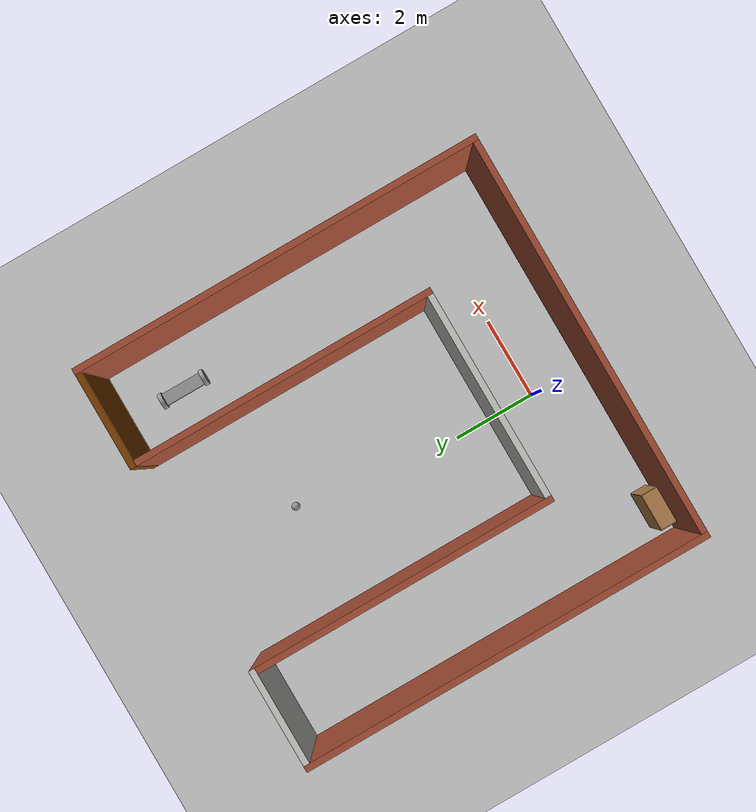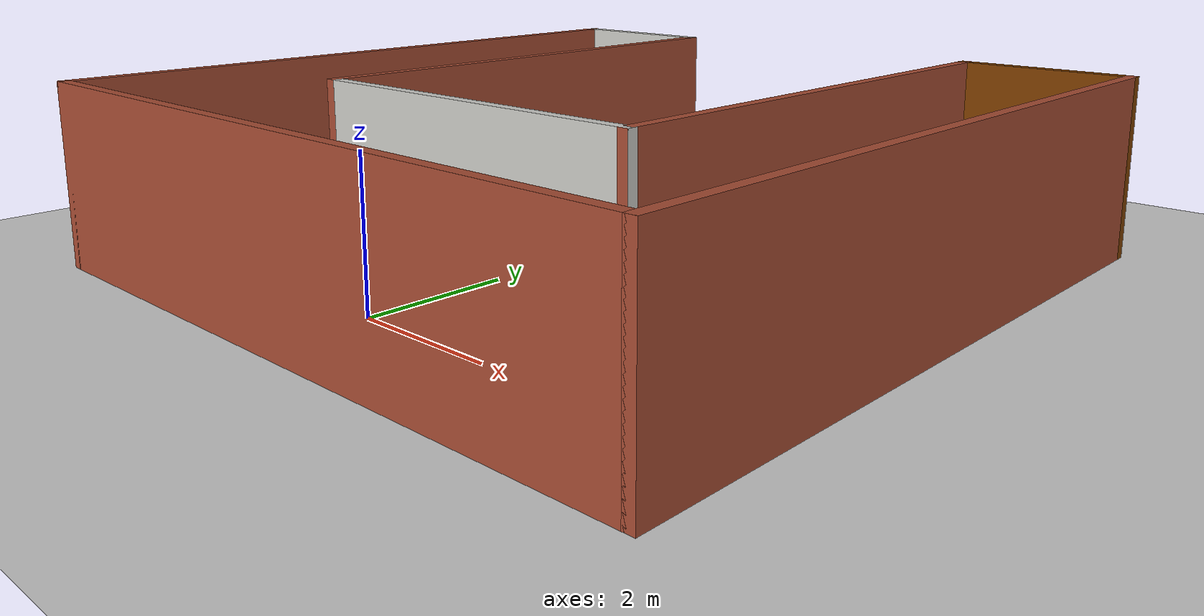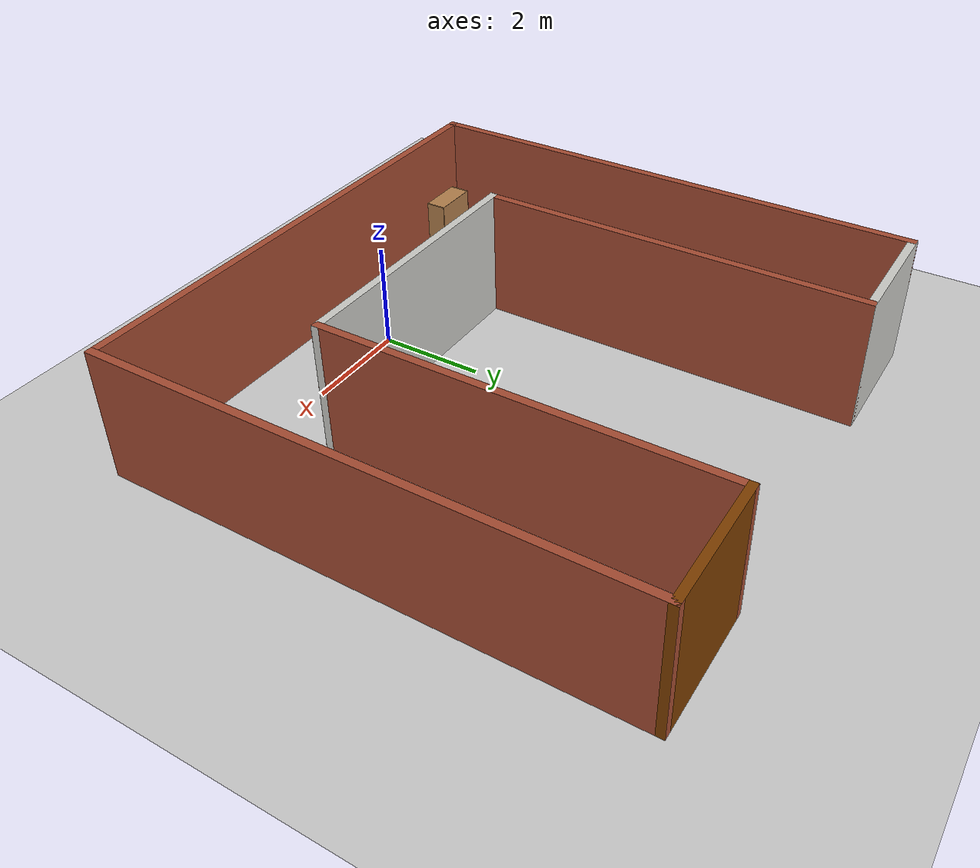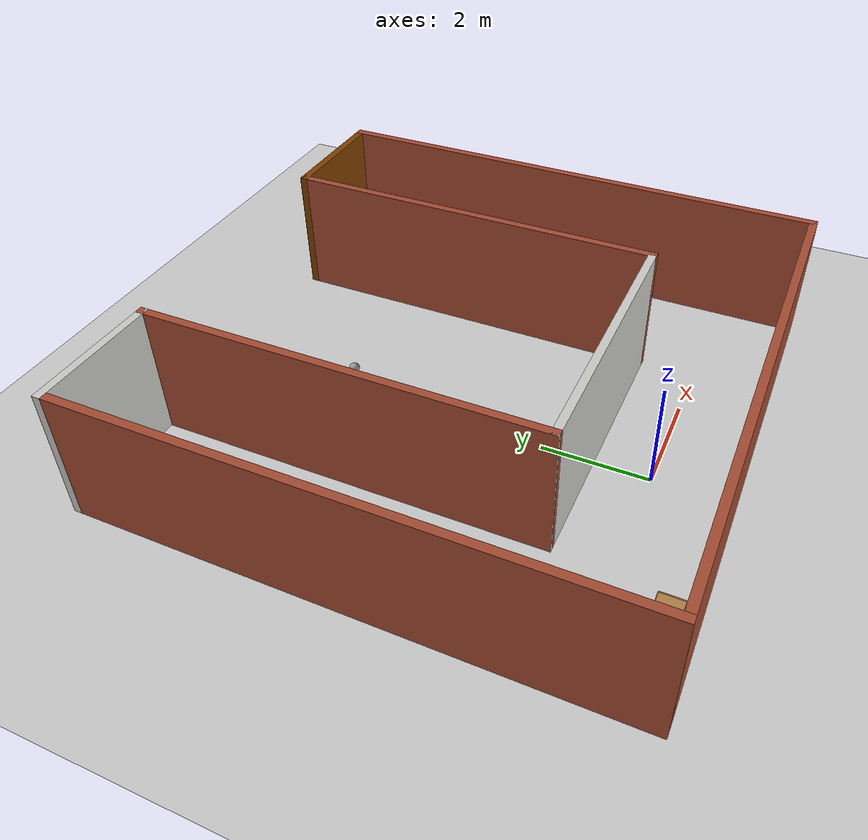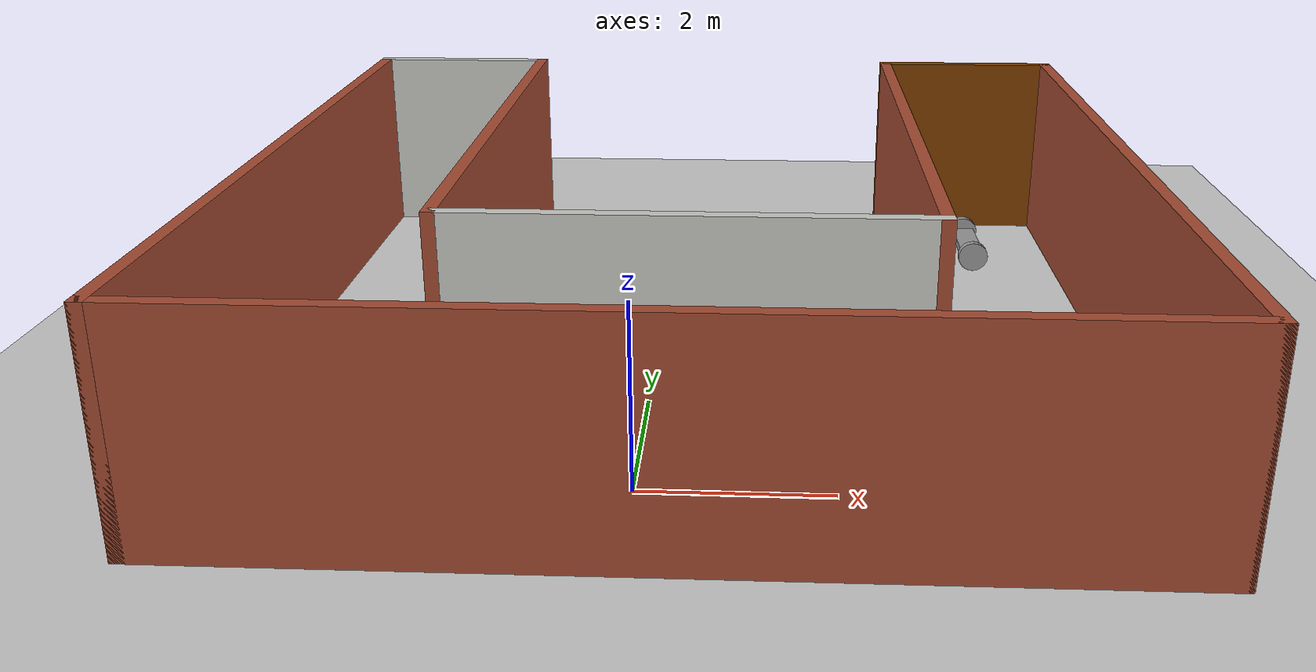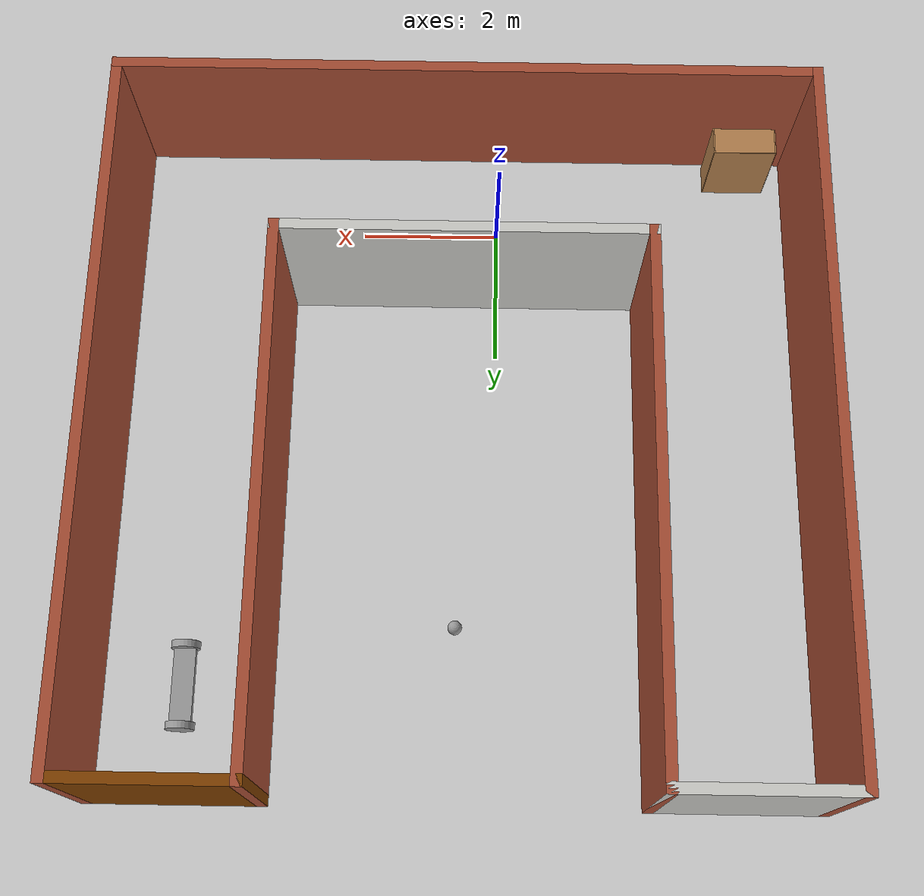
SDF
<sdf version="1.6">
 <world name="default">
  <plugin name="hello" filename="libhello.so"/>
  <light name="sun" type="directional">
   <pose>0 0 10 0 -0 0</pose>
   <diffuse>0.8 0.8 0.8 1</diffuse>
   <specular>0.2 0.2 0.2 1</specular>
   <attenuation>
    <range>1000</range>
    <constant>0.9</constant>
    <linear>0.01</linear>
    <quadratic>0.001</quadratic>
   </attenuation>
   <direction>-0.5 0.1 -0.9</direction>
  </light>
  <model name="ground_plane">
   <static>1</static>
   <link name="link">
    <collision name="collision">
     <geometry><plane><normal>0 0 1</normal><size>100 100</size></plane></geometry>
     <surface>
      <contact><collide_bitmask>65535</collide_bitmask></contact>
      <friction><ode><mu>100</mu><mu2>50</mu2></ode></friction>
     </surface>
    </collision>
    <visual name="visual">
     <cast_shadows>0</cast_shadows>
     <geometry><plane><normal>0 0 1</normal><size>100 100</size></plane></geometry>
     <material>
      <script><uri>file://media/materials/scripts/gazebo.material</uri><name>Gazebo/Grey</name></script>
     </material>
    </visual>
   </link>
  </model>
  <gravity>0 0 -9.8</gravity>
  <magnetic_field>6e-06 2.3e-05 -4.2e-05</magnetic_field>
  <atmosphere type="adiabatic"/>
  <physics name="default_physics" default="0" type="ode">
   <max_step_size>0.001</max_step_size>
   <real_time_factor>1</real_time_factor>
   <real_time_update_rate>1000</real_time_update_rate>
  </physics>
  <scene><ambient>0.4 0.4 0.4 1</ambient><background>0.7 0.7 0.7 1</background><shadows>1</shadows></scene>
  <spherical_coordinates>
   <surface_model>EARTH_WGS84</surface_model>
   <latitude_deg>0</latitude_deg>
   <longitude_deg>0</longitude_deg>
   <elevation>0</elevation>
   <heading_deg>0</heading_deg>
  </spherical_coordinates>
  <model name="mybuilding">
   <pose>0.47786 3.52193 0 0 -0 0</pose>
   <link name="Wall_12">
    <collision name="Wall_12_Collision">
     <geometry><box><size>10 0.15 2.5</size></box></geometry>
     <pose>0 0 1.25 0 -0 0</pose>
    </collision>
    <visual name="Wall_12_Visual">
     <pose>0 0 1.25 0 -0 0</pose>
     <geometry><box><size>10 0.15 2.5</size></box></geometry>
     <material>
      <script><uri>file://media/materials/scripts/gazebo.material</uri><name>Gazebo/Bricks</name></script>
      <ambient>0.996078 0.47451 0.0196078 1</ambient>
     </material>
     <meta><layer>0</layer></meta>
    </visual>
    <pose>4.925 -0.00017 0 0 -0 1.5708</pose>
   </link>
   <link name="Wall_14">
    <collision name="Wall_14_Collision">
     <geometry><box><size>2.5 0.15 2.5</size></box></geometry>
     <pose>0 0 1.25 0 -0 0</pose>
    </collision>
    <visual name="Wall_14_Visual">
     <pose>0 0 1.25 0 -0 0</pose>
     <geometry><box><size>2.5 0.15 2.5</size></box></geometry>
     <material>
      <script><uri>file://media/materials/scripts/gazebo.material</uri><name>Gazebo/Grey</name></script>
      <ambient>0.498039 0.247059 0 1</ambient>
     </material>
     <meta><layer>0</layer></meta>
    </visual>
    <pose>3.75 4.92483 0 0 -0 3.14159</pose>
   </link>
   <link name="Wall_16">
    <collision name="Wall_16_Collision">
     <geometry><box><size>10 0.15 2.5</size></box></geometry>
     <pose>0 0 1.25 0 -0 0</pose>
    </collision>
    <visual name="Wall_16_Visual">
     <pose>0 0 1.25 0 -0 0</pose>
     <geometry><box><size>10 0.15 2.5</size></box></geometry>
     <material>
      <script><uri>file://media/materials/scripts/gazebo.material</uri><name>Gazebo/Bricks</name></script>
      <ambient>0.996078 0.47451 0.0196078 1</ambient>
     </material>
     <meta><layer>0</layer></meta>
    </visual>
    <pose>-4.925 -0.00017 0 0 0 -1.5708</pose>
   </link>
   <link name="Wall_18">
    <collision name="Wall_18_Collision">
     <geometry><box><size>10 0.15 2.5</size></box></geometry>
     <pose>0 0 1.25 0 -0 0</pose>
    </collision>
    <visual name="Wall_18_Visual">
     <pose>0 0 1.25 0 -0 0</pose>
     <geometry><box><size>10 0.15 2.5</size></box></geometry>
     <material>
      <script><uri>file://media/materials/scripts/gazebo.material</uri><name>Gazebo/Bricks</name></script>
      <ambient>0.996078 0.47451 0.0196078 1</ambient>
     </material>
     <meta><layer>0</layer></meta>
    </visual>
    <pose>0 -4.92517 0 0 -0 0</pose>
   </link>
   <link name="Wall_20">
    <collision name="Wall_20_Collision">
     <geometry><box><size>2.5 0.15 2.5</size></box></geometry>
     <pose>0 0 1.25 0 -0 0</pose>
    </collision>
    <visual name="Wall_20_Visual">
     <pose>0 0 1.25 0 -0 0</pose>
     <geometry><box><size>2.5 0.15 2.5</size></box></geometry>
     <material>
      <script><uri>file://media/materials/scripts/gazebo.material</uri><name>Gazebo/CeilingTiled</name></script>
      <ambient>0.498039 0.247059 0 1</ambient>
     </material>
     <meta><layer>0</layer></meta>
    </visual>
    <pose>-3.75 4.92483 0 0 -0 0</pose>
   </link>
   <link name="Wall_22">
    <collision name="Wall_22_Collision">
     <geometry><box><size>7.5 0.15 2.5</size></box></geometry>
     <pose>0 0 1.25 0 -0 0</pose>
    </collision>
    <visual name="Wall_22_Visual">
     <pose>0 0 1.25 0 -0 0</pose>
     <geometry><box><size>7.5 0.15 2.5</size></box></geometry>
     <material>
      <script><uri>file://media/materials/scripts/gazebo.material</uri><name>Gazebo/Bricks</name></script>
      <ambient>0.996078 0.47451 0.0196078 1</ambient>
     </material>
     <meta><layer>0</layer></meta>
    </visual>
    <pose>-2.575 1.24983 0 0 0 -1.5708</pose>
   </link>
   <link name="Wall_24">
    <collision name="Wall_24_Collision">
     <geometry><box><size>7.50068 0.15 2.5</size></box></geometry>
     <pose>0 0 1.25 0 -0 0</pose>
    </collision>
    <visual name="Wall_24_Visual">
     <pose>0 0 1.25 0 -0 0</pose>
     <geometry><box><size>7.50068 0.15 2.5</size></box></geometry>
     <material>
      <script><uri>file://media/materials/scripts/gazebo.material</uri><name>Gazebo/Bricks</name></script>
      <ambient>0.996078 0.47451 0.0196078 1</ambient>
     </material>
     <meta><layer>0</layer></meta>
    </visual>
    <pose>2.575 1.24983 0 0 0 -1.5708</pose>
   </link>
   <link name="Wall_26">
    <collision name="Wall_26_Collision">
     <geometry><box><size>5.3 0.15 2.5</size></box></geometry>
     <pose>0 0 1.25 0 -0 0</pose>
    </collision>
    <visual name="Wall_26_Visual">
     <pose>0 0 1.25 0 -0 0</pose>
     <geometry><box><size>5.3 0.15 2.5</size></box></geometry>
     <material>
      <script><uri>file://media/materials/scripts/gazebo.material</uri><name>Gazebo/CeilingTiled</name></script>
      <ambient>0.498039 0.247059 0 1</ambient>
     </material>
     <meta><layer>0</layer></meta>
    </visual>
    <pose>0 -2.42517 0 0 -0 0</pose>
   </link>
   <static>1</static>
  </model>
  <model name="bookshelf">
   <static>1</static>
   <link name="link">
    <inertial><mass>1</mass></inertial>
    <collision name="back">
     <pose>0 0.005 0.6 0 -0 0</pose>
     <geometry><box><size>0.9 0.01 1.2</size></box></geometry>
    </collision>
    <visual name="visual1">
     <pose>0 0.005 0.6 0 -0 0</pose>
     <geometry><box><size>0.9 0.01 1.2</size></box></geometry>
     <material>
      <script><uri>file://media/materials/scripts/gazebo.material</uri><name>Gazebo/Wood</name></script>
     </material>
    </visual>
    <collision name="left_side">
     <pose>0.45 -0.195 0.6 0 -0 0</pose>
     <geometry><box><size>0.02 0.4 1.2</size></box></geometry>
    </collision>
    <visual name="visual2">
     <pose>0.45 -0.195 0.6 0 -0 0</pose>
     <geometry><box><size>0.02 0.4 1.2</size></box></geometry>
     <material>
      <script><uri>file://media/materials/scripts/gazebo.material</uri><name>Gazebo/Wood</name></script>
     </material>
    </visual>
    <collision name="right_side">
     <pose>-0.45 -0.195 0.6 0 -0 0</pose>
     <geometry><box><size>0.02 0.4 1.2</size></box></geometry>
    </collision>
    <visual name="visual3">
     <pose>-0.45 -0.195 0.6 0 -0 0</pose>
     <geometry><box><size>0.02 0.4 1.2</size></box></geometry>
     <material>
      <script><uri>file://media/materials/scripts/gazebo.material</uri><name>Gazebo/Wood</name></script>
     </material>
    </visual>
    <collision name="bottom">
     <pose>0 -0.195 0.03 0 -0 0</pose>
     <geometry><box><size>0.88 0.4 0.06</size></box></geometry>
    </collision>
    <visual name="visual4">
     <pose>0 -0.195 0.03 0 -0 0</pose>
     <geometry><box><size>0.88 0.4 0.06</size></box></geometry>
     <material>
      <script><uri>file://media/materials/scripts/gazebo.material</uri><name>Gazebo/Wood</name></script>
     </material>
    </visual>
    <collision name="top">
     <pose>0 -0.195 1.19 0 -0 0</pose>
     <geometry><box><size>0.88 0.4 0.02</size></box></geometry>
    </collision>
    <visual name="visual5">
     <pose>0 -0.195 1.19 0 -0 0</pose>
     <geometry><box><size>0.88 0.4 0.02</size></box></geometry>
     <material>
      <script><uri>file://media/materials/scripts/gazebo.material</uri><name>Gazebo/Wood</name></script>
     </material>
    </visual>
    <collision name="low_shelf">
     <pose>0 -0.195 0.43 0 -0 0</pose>
     <geometry><box><size>0.88 0.4 0.02</size></box></geometry>
    </collision>
    <visual name="visual6">
     <pose>0 -0.195 0.43 0 -0 0</pose>
     <geometry><box><size>0.88 0.4 0.02</size></box></geometry>
     <material>
      <script><uri>file://media/materials/scripts/gazebo.material</uri><name>Gazebo/Wood</name></script>
     </material>
    </visual>
    <collision name="high_shelf">
     <pose>0 -0.195 0.8 0 -0 0</pose>
     <geometry><box><size>0.88 0.4 0.02</size></box></geometry>
    </collision>
    <visual name="visual7">
     <pose>0 -0.195 0.8 0 -0 0</pose>
     <geometry><box><size>0.88 0.4 0.02</size></box></geometry>
     <material>
      <script><uri>file://media/materials/scripts/gazebo.material</uri><name>Gazebo/Wood</name></script>
     </material>
    </visual>
   </link>
   <pose>-3.63382 -0.855349 0 0 -0 0</pose>
  </model>
  <model name="robot_clone">
   <link name="link_2">
    <inertial>
     <mass>1</mass>
     <inertia>
      <ixx>0.166667</ixx>
      <ixy>0</ixy>
      <ixz>0</ixz>
      <iyy>0.166667</iyy>
      <iyz>0</iyz>
      <izz>0.166667</izz>
     </inertia>
    </inertial>
    <visual name="visual">
     <geometry><box><size>0.3 1 0.1</size></box></geometry>
     <material>
      <lighting>1</lighting>
      <script><uri>file://media/materials/scripts/gazebo.material</uri><name>Gazebo/Grey</name></script>
      <shader type="pixel"><normal_map>__default__</normal_map></shader>
      <ambient>0.3 0.3 0.3 1</ambient>
      <diffuse>0.7 0.7 0.7 1</diffuse>
      <specular>0.01 0.01 0.01 1</specular>
      <emissive>0 0 0 1</emissive>
     </material>
    </visual>
    <collision name="collision">
     <geometry><box><size>0.3 1 0.1</size></box></geometry>
     <surface>
      <friction>
       <ode><mu>1</mu><mu2>1</mu2><fdir1>0 0 0</fdir1><slip1>0</slip1><slip2>0</slip2></ode>
       <torsional>
        <coefficient>1</coefficient>
        <patch_radius>0</patch_radius>
        <surface_radius>0</surface_radius>
        <use_patch_radius>1</use_patch_radius>
        <ode><slip>0</slip></ode>
       </torsional>
      </friction>
      <bounce><restitution_coefficient>0</restitution_coefficient><threshold>1e+06</threshold></bounce>
      <contact>
       <collide_without_contact>0</collide_without_contact>
       <collide_without_contact_bitmask>1</collide_without_contact_bitmask>
       <collide_bitmask>1</collide_bitmask>
       <ode>
        <soft_cfm>0</soft_cfm>
        <soft_erp>0.2</soft_erp>
        <kp>1e+13</kp>
        <kd>1</kd>
        <max_vel>0.01</max_vel>
        <min_depth>0</min_depth>
       </ode>
       <bullet>
        <split_impulse>1</split_impulse>
        <split_impulse_penetration_threshold>-0.01</split_impulse_penetration_threshold>
        <soft_cfm>0</soft_cfm>
        <soft_erp>0.2</soft_erp>
        <kp>1e+13</kp>
        <kd>1</kd>
       </bullet>
      </contact>
     </surface>
    </collision>
   </link>
   <link name="link_3">
    <pose>0 -0.550019 0 1.5707 -0 0</pose>
    <inertial>
     <mass>1</mass>
     <inertia><ixx>0.145833</ixx><ixy>0</ixy><ixz>0</ixz><iyy>0.145833</iyy><iyz>0</iyz><izz>0.125</izz></inertia>
    </inertial>
    <visual name="visual">
     <geometry><cylinder><radius>0.2</radius><length>0.1</length></cylinder></geometry>
     <material>
      <lighting>1</lighting>
      <script><uri>file://media/materials/scripts/gazebo.material</uri><name>Gazebo/Grey</name></script>
      <shader type="pixel"><normal_map>__default__</normal_map></shader>
      <ambient>0.3 0.3 0.3 1</ambient>
      <diffuse>0.7 0.7 0.7 1</diffuse>
      <specular>0.01 0.01 0.01 1</specular>
      <emissive>0 0 0 1</emissive>
     </material>
    </visual>
    <collision name="collision">
     <geometry><cylinder><radius>0.2</radius><length>0.1</length></cylinder></geometry>
     <surface>
      <friction>
       <ode><mu>1</mu><mu2>1</mu2><fdir1>0 0 0</fdir1><slip1>0</slip1><slip2>0</slip2></ode>
       <torsional>
        <coefficient>1</coefficient>
        <patch_radius>0</patch_radius>
        <surface_radius>0</surface_radius>
        <use_patch_radius>1</use_patch_radius>
        <ode><slip>0</slip></ode>
       </torsional>
      </friction>
      <bounce><restitution_coefficient>0</restitution_coefficient><threshold>1e+06</threshold></bounce>
      <contact>
       <collide_without_contact>0</collide_without_contact>
       <collide_without_contact_bitmask>1</collide_without_contact_bitmask>
       <collide_bitmask>1</collide_bitmask>
       <ode>
        <soft_cfm>0</soft_cfm>
        <soft_erp>0.2</soft_erp>
        <kp>1e+13</kp>
        <kd>1</kd>
        <max_vel>0.01</max_vel>
        <min_depth>0</min_depth>
       </ode>
       <bullet>
        <split_impulse>1</split_impulse>
        <split_impulse_penetration_threshold>-0.01</split_impulse_penetration_threshold>
        <soft_cfm>0</soft_cfm>
        <soft_erp>0.2</soft_erp>
        <kp>1e+13</kp>
        <kd>1</kd>
       </bullet>
      </contact>
     </surface>
    </collision>
   </link>
   <link name="link_3_clone">
    <pose>0 0.550019 0 1.5707 -0 0</pose>
    <inertial>
     <mass>1</mass>
     <inertia><ixx>0.145833</ixx><ixy>0</ixy><ixz>0</ixz><iyy>0.145833</iyy><iyz>0</iyz><izz>0.125</izz></inertia>
    </inertial>
    <visual name="visual">
     <geometry><cylinder><radius>0.2</radius><length>0.1</length></cylinder></geometry>
     <material>
      <lighting>1</lighting>
      <script><uri>file://media/materials/scripts/gazebo.material</uri><name>Gazebo/Grey</name></script>
      <shader type="pixel"><normal_map>__default__</normal_map></shader>
      <ambient>0.3 0.3 0.3 1</ambient>
      <diffuse>0.7 0.7 0.7 1</diffuse>
      <specular>0.01 0.01 0.01 1</specular>
      <emissive>0 0 0 1</emissive>
     </material>
    </visual>
    <collision name="collision">
     <geometry><cylinder><radius>0.2</radius><length>0.1</length></cylinder></geometry>
     <surface>
      <friction>
       <ode><mu>1</mu><mu2>1</mu2><fdir1>0 0 0</fdir1><slip1>0</slip1><slip2>0</slip2></ode>
       <torsional>
        <coefficient>1</coefficient>
        <patch_radius>0</patch_radius>
        <surface_radius>0</surface_radius>
        <use_patch_radius>1</use_patch_radius>
        <ode><slip>0</slip></ode>
       </torsional>
      </friction>
      <bounce><restitution_coefficient>0</restitution_coefficient><threshold>1e+06</threshold></bounce>
      <contact>
       <collide_without_contact>0</collide_without_contact>
       <collide_without_contact_bitmask>1</collide_without_contact_bitmask>
       <collide_bitmask>1</collide_bitmask>
       <ode>
        <soft_cfm>0</soft_cfm>
        <soft_erp>0.2</soft_erp>
        <kp>1e+13</kp>
        <kd>1</kd>
        <max_vel>0.01</max_vel>
        <min_depth>0</min_depth>
       </ode>
       <bullet>
        <split_impulse>1</split_impulse>
        <split_impulse_penetration_threshold>-0.01</split_impulse_penetration_threshold>
        <soft_cfm>0</soft_cfm>
        <soft_erp>0.2</soft_erp>
        <kp>1e+13</kp>
        <kd>1</kd>
       </bullet>
      </contact>
     </surface>
    </collision>
   </link>
   <joint name="link_2_JOINT_1" type="revolute">
    <parent>link_2</parent>
    <child>link_3</child>
    <axis>
     <xyz>0 0 1</xyz>
     <use_parent_model_frame>0</use_parent_model_frame>
     <limit>
      <lower>-1.79769e+308</lower>
      <upper>1.79769e+308</upper>
      <effort>-1</effort>
      <velocity>-1</velocity>
     </limit>
     <dynamics>
      <spring_reference>0</spring_reference>
      <spring_stiffness>0</spring_stiffness>
      <damping>0</damping>
     </dynamics>
    </axis>
    <physics>
     <ode><limit><cfm>0</cfm><erp>0.2</erp></limit><suspension><cfm>0</cfm><erp>0.2</erp></suspension></ode>
    </physics>
   </joint>
   <joint name="link_2_JOINT_2" type="revolute">
    <parent>link_2</parent>
    <child>link_3_clone</child>
    <axis>
     <xyz>0 0 1</xyz>
     <use_parent_model_frame>0</use_parent_model_frame>
     <limit>
      <lower>-1.79769e+308</lower>
      <upper>1.79769e+308</upper>
      <effort>-1</effort>
      <velocity>-1</velocity>
     </limit>
     <dynamics>
      <spring_reference>0</spring_reference>
      <spring_stiffness>0</spring_stiffness>
      <damping>0</damping>
     </dynamics>
    </axis>
    <physics>
     <ode><limit><cfm>0</cfm><erp>0.2</erp></limit><suspension><cfm>0</cfm><erp>0.2</erp></suspension></ode>
    </physics>
   </joint>
   <static>0</static>
   <pose>4.2065 6.95428 0.200005 0 -0 0</pose>
  </model>
  <model name="my_ball">
   <link name="link_0">
    <inertial>
     <mass>1</mass>
     <inertia><ixx>0.1</ixx><ixy>0</ixy><ixz>0</ixz><iyy>0.1</iyy><iyz>0</iyz><izz>0.1</izz></inertia>
    </inertial>
    <visual name="visual">
     <geometry><sphere><radius>0.1</radius></sphere></geometry>
     <material>
      <lighting>1</lighting>
      <script><uri>file://media/materials/scripts/gazebo.material</uri><name>Gazebo/Grey</name></script>
      <shader type="pixel"><normal_map>__default__</normal_map></shader>
      <ambient>1 1 1 1</ambient>
      <diffuse>1 1 1 1</diffuse>
      <specular>1 1 1 1</specular>
      <emissive>1 1 1 1</emissive>
     </material>
    </visual>
    <collision name="collision">
     <geometry><sphere><radius>0.1</radius></sphere></geometry>
     <surface>
      <friction>
       <ode><mu>1</mu><mu2>1</mu2><fdir1>0 0 0</fdir1><slip1>0</slip1><slip2>0</slip2></ode>
       <torsional>
        <coefficient>1</coefficient>
        <patch_radius>0</patch_radius>
        <surface_radius>0</surface_radius>
        <use_patch_radius>1</use_patch_radius>
        <ode><slip>0</slip></ode>
       </torsional>
      </friction>
      <bounce><restitution_coefficient>0</restitution_coefficient><threshold>1e+06</threshold></bounce>
      <contact>
       <collide_without_contact>0</collide_without_contact>
       <collide_without_contact_bitmask>1</collide_without_contact_bitmask>
       <collide_bitmask>1</collide_bitmask>
       <ode>
        <soft_cfm>0</soft_cfm>
        <soft_erp>0.2</soft_erp>
        <kp>1e+13</kp>
        <kd>1</kd>
        <max_vel>0.01</max_vel>
        <min_depth>0</min_depth>
       </ode>
       <bullet>
        <split_impulse>1</split_impulse>
        <split_impulse_penetration_threshold>-0.01</split_impulse_penetration_threshold>
        <soft_cfm>0</soft_cfm>
        <soft_erp>0.2</soft_erp>
        <kp>1e+13</kp>
        <kd>1</kd>
       </bullet>
      </contact>
     </surface>
    </collision>
   </link>
   <static>0</static>
   <pose>0.522854 6.07672 0.1 0 -0 0</pose>
  </model>
  <plugin filename="libcollision_map_creator.so" name="collision_map_creator"/>
 </world>
</sdf>
